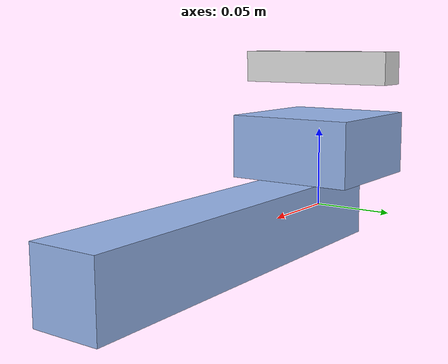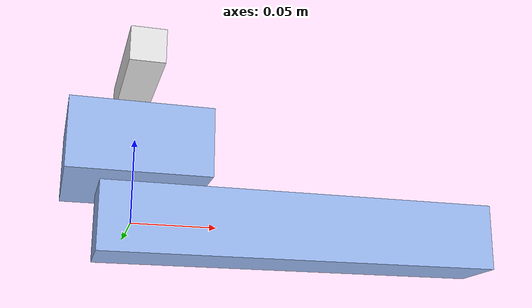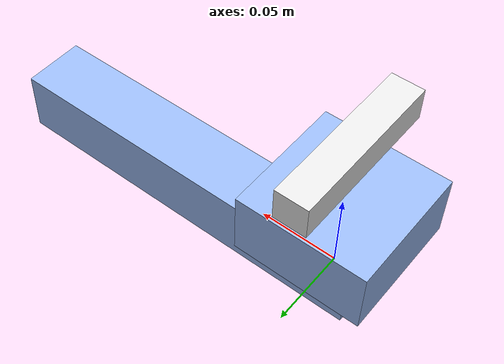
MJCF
<?xml version="1.0" encoding="UTF-8"?>
<mujoco model="slider">
    <compiler angle="radian" inertiafromgeom="auto" inertiagrouprange="1 5" />

    <asset>
        <material name="slider_col" rgba="0.96 0.26 0.33 0.5" shininess="0" specular="0" />
        <material name="slider_handle" rgba=".9 .9 .9 1" shininess="1" reflectance=".7" specular=".5" />
        <material name="slider_body" rgba="0.6 0.72 0.94 1" shininess="1" reflectance="1" specular=".5" />
    </asset>

    <default>
        <default class="slider_base">
            <joint armature="0.001" damping="2" frictionloss="2" limited="true" />
            <geom conaffinity="0" contype="0" group="1" type="box" />
            <default class="slider_col">
                <geom conaffinity="1" condim="3" contype="1" group="4" material="slider_col" solimp="0.99 0.99 0.01" solref="0.01 1" />
            </default>
            <site type="sphere" size=".01" rgba="0 1 0 1" group="5" />
        </default>
    </default>

    <worldbody>
        <body childclass="slider_base" name="slider_base" pos="0 0 0" euler="0 0 0">
            <!-- Static rail (slightly longer than the joint range so the carriage stays supported) -->
            <geom name="slider_rail" material="slider_body" type="box" size="0.12 0.02 0.02" pos="0.1 0 0.00" />
            <geom name="slider_rail_col" class="slider_col" type="box" size="0.12 0.02 0.02" pos="0.1 0 0.00" />

            <!-- Virtual body holding the target site (moved manually in code) -->
            <body name="slider_link_virtual" pos="0 0 0">
                <body name="slider_link_virtual_handle" pos="0 0 0.09">
                    <site name="slider_handle_center_target" pos="0 0 0.0001" group="5" />
                </body>
            </body>

            <!-- Sliding carriage with the graspable handle -->
            <body name="slider_link" pos="0 0 0">
                <site name="slider_handle_center" pos="0 0 0.09" group="5" />
                <joint type="slide" range="0 0.2" axis="1 0 0" name="slider_slide" />
                <geom material="slider_body" type="box" size="0.04 0.04 0.02" pos="0 0 0.04" />
                <geom class="slider_col" type="box" size="0.04 0.04 0.02" pos="0 0 0.04" />
                <geom material="slider_handle" type="box" size="0.01 0.05 0.01" pos="0 0 0.09" />
                <geom class="slider_col" type="box" size="0.01 0.05 0.01" pos="0 0 0.09" />
            </body>
        </body>
    </worldbody>
</mujoco>
